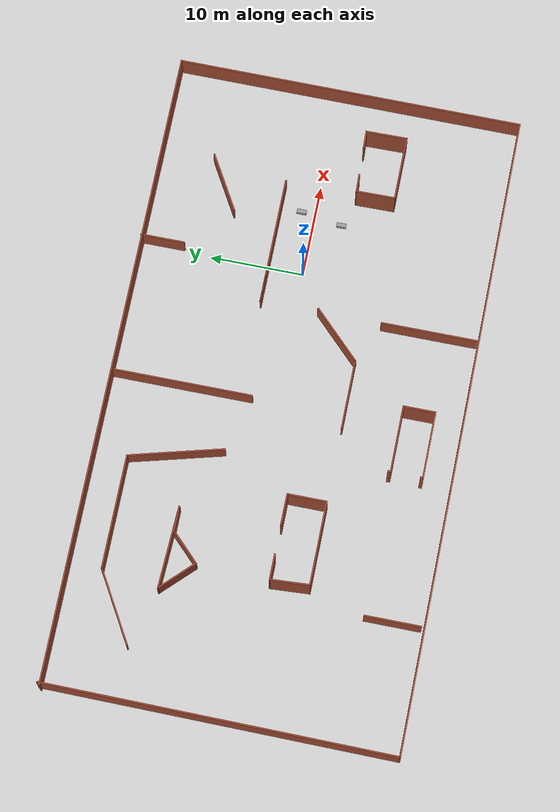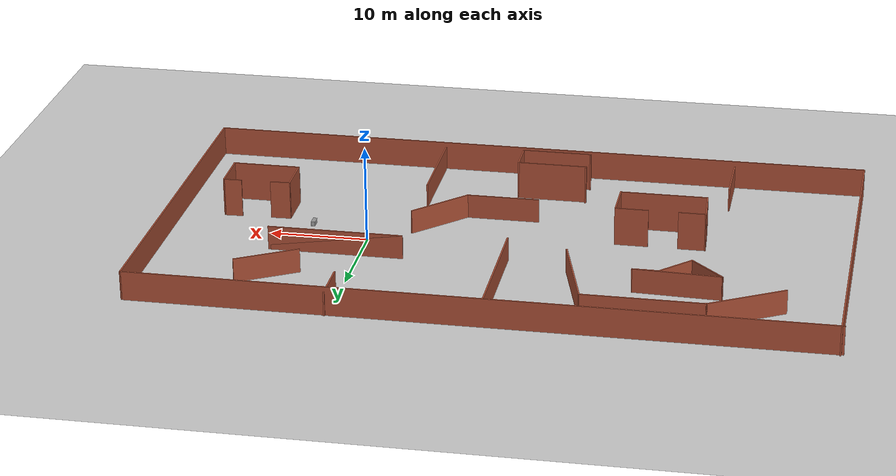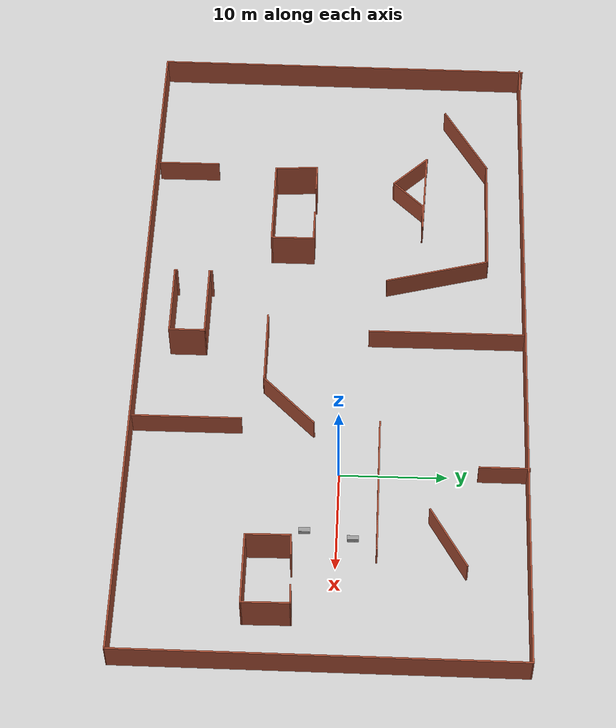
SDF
<sdf version="1.7">
 <world name="default">
  <model name="ground_plane">
   <static>1</static>
   <link name="link">
    <collision name="collision">
     <geometry><plane><normal>0 0 1</normal><size>100 100</size></plane></geometry>
     <surface>
      <contact><collide_bitmask>65535</collide_bitmask></contact>
      <friction><ode><mu>100</mu><mu2>50</mu2></ode></friction>
     </surface>
    </collision>
    <visual name="visual">
     <cast_shadows>0</cast_shadows>
     <geometry><plane><normal>0 0 1</normal><size>100 100</size></plane></geometry>
     <material>
      <script><uri>file://media/materials/scripts/gazebo.material</uri><name>Gazebo/Grey</name></script>
     </material>
    </visual>
   </link>
  </model>
  <model name="forkwork.world">
   <pose>-14.2792 -0.985001 0 0 -0 0</pose>
   <link name="Wall_0">
    <collision name="Wall_0_Collision">
     <geometry><box><size>37.2514 0.15 3</size></box></geometry>
     <pose>0 0 1.5 0 -0 0</pose>
    </collision>
    <visual name="Wall_0_Visual">
     <pose>0 0 1.5 0 -0 0</pose>
     <geometry><box><size>37.2514 0.15 3</size></box></geometry>
     <material>
      <script><uri>file://media/materials/scripts/gazebo.material</uri><name>Gazebo/Bricks</name></script>
      <ambient>1 1 1 1</ambient>
     </material>
     <meta><layer>0</layer></meta>
    </visual>
    <pose>-34.4248 1e-06 0 0 -0 -1.57947</pose>
   </link>
   <link name="Wall_1">
    <collision name="Wall_1_Collision">
     <geometry><box><size>69.1611 0.15 3</size></box></geometry>
     <pose>0 0 1.5 0 -0 0</pose>
    </collision>
    <visual name="Wall_1_Visual">
     <pose>0 0 1.5 0 -0 0</pose>
     <geometry><box><size>69.1611 0.15 3</size></box></geometry>
     <material>
      <script><uri>file://media/materials/scripts/gazebo.material</uri><name>Gazebo/Bricks</name></script>
      <ambient>1 1 1 1</ambient>
     </material>
     <meta><layer>0</layer></meta>
    </visual>
    <pose>-0.080338 -18.55 0 0 -0 0</pose>
   </link>
   <link name="Wall_10">
    <collision name="Wall_10_Collision">
     <geometry><box><size>6 0.15 2.5</size></box></geometry>
     <pose>0 0 1.25 0 -0 0</pose>
    </collision>
    <visual name="Wall_10_Visual">
     <pose>0 0 1.25 0 -0 0</pose>
     <geometry><box><size>6 0.15 2.5</size></box></geometry>
     <material>
      <script><uri>file://media/materials/scripts/gazebo.material</uri><name>Gazebo/Bricks</name></script>
      <ambient>1 1 1 1</ambient>
     </material>
     <meta><layer>0</layer></meta>
    </visual>
    <pose>-21.0697 -15.2699 0 0 -0 -1.5708</pose>
   </link>
   <link name="Wall_12">
    <collision name="Wall_12_Collision">
     <geometry><box><size>10.25 0.15 2.5</size></box></geometry>
     <pose>0 0 1.25 0 -0 0</pose>
    </collision>
    <visual name="Wall_12_Visual">
     <pose>0 0 1.25 0 -0 0</pose>
     <geometry><box><size>10.25 0.15 2.5</size></box></geometry>
     <material>
      <script><uri>file://media/materials/scripts/gazebo.material</uri><name>Gazebo/Bricks</name></script>
      <ambient>1 1 1 1</ambient>
     </material>
     <meta><layer>0</layer></meta>
    </visual>
    <pose>9.87941 -13.292 0 0 -0 -1.5708</pose>
   </link>
   <link name="Wall_14">
    <collision name="Wall_14_Collision">
     <geometry><box><size>13.5 0.15 2.5</size></box></geometry>
     <pose>0 0 1.25 0 -0 0</pose>
    </collision>
    <visual name="Wall_14_Visual">
     <pose>0 0 1.25 0 -0 0</pose>
     <geometry><box><size>13.5 0.15 2.5</size></box></geometry>
     <material>
      <script><uri>file://media/materials/scripts/gazebo.material</uri><name>Gazebo/Bricks</name></script>
      <ambient>1 1 1 1</ambient>
     </material>
     <meta><layer>0</layer></meta>
    </visual>
    <pose>16.5544 4.66556 0 0 -0 0</pose>
   </link>
   <link name="Wall_16">
    <collision name="Wall_16_Collision">
     <geometry><box><size>15 0.15 2.5</size></box></geometry>
     <pose>0 0 1.25 0 -0 0</pose>
    </collision>
    <visual name="Wall_16_Visual">
     <pose>0 0 1.25 0 -0 0</pose>
     <geometry><box><size>15 0.15 2.5</size></box></geometry>
     <material>
      <script><uri>file://media/materials/scripts/gazebo.material</uri><name>Gazebo/Bricks</name></script>
      <ambient>1 1 1 1</ambient>
     </material>
     <meta><layer>0</layer></meta>
    </visual>
    <pose>-0.544267 10.8715 0 0 -0 -1.5708</pose>
   </link>
   <link name="Wall_18">
    <collision name="Wall_18_Collision">
     <geometry><box><size>4.75 0.15 2.5</size></box></geometry>
     <pose>0 0 1.25 0 -0 0</pose>
    </collision>
    <visual name="Wall_18_Visual">
     <pose>0 0 1.25 0 -0 0</pose>
     <geometry><box><size>4.75 0.15 2.5</size></box></geometry>
     <material>
      <script><uri>file://media/materials/scripts/gazebo.material</uri><name>Gazebo/Bricks</name></script>
      <ambient>1 1 1 1</ambient>
     </material>
     <meta><layer>0</layer></meta>
    </visual>
    <pose>14.5671 16.1364 0 0 -0 -1.5708</pose>
   </link>
   <link name="Wall_2">
    <collision name="Wall_2_Collision">
     <geometry><box><size>37.0004 0.15 3</size></box></geometry>
     <pose>0 0 1.5 0 -0 0</pose>
    </collision>
    <visual name="Wall_2_Visual">
     <pose>0 0 1.5 0 -0 0</pose>
     <geometry><box><size>37.0004 0.15 3</size></box></geometry>
     <material>
      <script><uri>file://media/materials/scripts/gazebo.material</uri><name>Gazebo/Bricks</name></script>
      <ambient>1 1 1 1</ambient>
     </material>
     <meta><layer>0</layer></meta>
    </visual>
    <pose>34.5057 -0.124999 0 0 -0 1.56643</pose>
   </link>
   <link name="Wall_20">
    <collision name="Wall_20_Collision">
     <geometry><box><size>13.75 0.15 2.5</size></box></geometry>
     <pose>0 0 1.25 0 -0 0</pose>
    </collision>
    <visual name="Wall_20_Visual">
     <pose>0 0 1.25 0 -0 0</pose>
     <geometry><box><size>13.75 0.15 2.5</size></box></geometry>
     <material>
      <script><uri>file://media/materials/scripts/gazebo.material</uri><name>Gazebo/Bricks</name></script>
      <ambient>1 1 1 1</ambient>
     </material>
     <meta><layer>0</layer></meta>
    </visual>
    <pose>16.6794 4.66556 0 0 -0 0</pose>
   </link>
   <link name="Wall_27">
    <pose>-6.14084 -13.726 0 0 -0 -1.5708</pose>
    <visual name="Wall_27_Visual_0">
     <pose>-1.67802 0 2 0 -0 0</pose>
     <geometry><box><size>0.393966 0.15 4</size></box></geometry>
     <material>
      <script><uri>file://media/materials/scripts/gazebo.material</uri><name>Gazebo/Bricks</name></script>
      <ambient>1 1 1 1</ambient>
     </material>
     <meta><layer>0</layer></meta>
    </visual>
    <collision name="Wall_27_Collision_0">
     <geometry><box><size>0.393966 0.15 4</size></box></geometry>
     <pose>-1.67802 0 2 0 -0 0</pose>
    </collision>
    <visual name="Wall_27_Visual_1">
     <pose>1.69698 0 2 0 -0 0</pose>
     <geometry><box><size>0.356034 0.15 4</size></box></geometry>
     <material>
      <script><uri>file://media/materials/scripts/gazebo.material</uri><name>Gazebo/Bricks</name></script>
      <ambient>1 1 1 1</ambient>
     </material>
     <meta><layer>0</layer></meta>
    </visual>
    <collision name="Wall_27_Collision_1">
     <geometry><box><size>0.356034 0.15 4</size></box></geometry>
     <pose>1.69698 0 2 0 -0 0</pose>
    </collision>
   </link>
   <link name="Wall_28">
    <collision name="Wall_28_Collision">
     <geometry><box><size>7.25 0.15 4</size></box></geometry>
     <pose>0 0 2 0 -0 0</pose>
    </collision>
    <visual name="Wall_28_Visual">
     <pose>0 0 2 0 -0 0</pose>
     <geometry><box><size>7.25 0.15 4</size></box></geometry>
     <material>
      <script><uri>file://media/materials/scripts/gazebo.material</uri><name>Gazebo/Bricks</name></script>
      <ambient>1 1 1 1</ambient>
     </material>
     <meta><layer>0</layer></meta>
    </visual>
    <pose>-2.59084 -15.526 0 0 -0 0</pose>
   </link>
   <link name="Wall_29">
    <collision name="Wall_29_Collision">
     <geometry><box><size>3.5 0.15 4</size></box></geometry>
     <pose>0 0 2 0 -0 0</pose>
    </collision>
    <visual name="Wall_29_Visual">
     <pose>0 0 2 0 -0 0</pose>
     <geometry><box><size>3.5 0.15 4</size></box></geometry>
     <material>
      <script><uri>file://media/materials/scripts/gazebo.material</uri><name>Gazebo/Bricks</name></script>
      <ambient>1 1 1 1</ambient>
     </material>
     <meta><layer>0</layer></meta>
    </visual>
    <pose>0.959162 -13.851 0 0 -0 1.5708</pose>
   </link>
   <link name="Wall_3">
    <collision name="Wall_3_Collision">
     <geometry><box><size>69.25 0.15 3</size></box></geometry>
     <pose>0 0 1.5 0 -0 0</pose>
    </collision>
    <visual name="Wall_3_Visual">
     <pose>0 0 1.5 0 -0 0</pose>
     <geometry><box><size>69.25 0.15 3</size></box></geometry>
     <material>
      <script><uri>file://media/materials/scripts/gazebo.material</uri><name>Gazebo/Bricks</name></script>
      <ambient>1 1 1 1</ambient>
     </material>
     <meta><layer>0</layer></meta>
    </visual>
    <pose>0.036161 18.3 0 0 -0 3.14159</pose>
   </link>
   <link name="Wall_30">
    <collision name="Wall_30_Collision">
     <geometry><box><size>7.25 0.15 4</size></box></geometry>
     <pose>0 0 2 0 -0 0</pose>
    </collision>
    <visual name="Wall_30_Visual">
     <pose>0 0 2 0 -0 0</pose>
     <geometry><box><size>7.25 0.15 4</size></box></geometry>
     <material>
      <script><uri>file://media/materials/scripts/gazebo.material</uri><name>Gazebo/Bricks</name></script>
      <ambient>1 1 1 1</ambient>
     </material>
     <meta><layer>0</layer></meta>
    </visual>
    <pose>-2.59084 -12.176 0 0 -0 3.14159</pose>
   </link>
   <link name="Wall_32">
    <collision name="Wall_32_Collision">
     <geometry><box><size>4.25 0.15 4</size></box></geometry>
     <pose>0 0 2 0 -0 0</pose>
    </collision>
    <visual name="Wall_32_Visual">
     <pose>0 0 2 0 -0 0</pose>
     <geometry><box><size>4.25 0.15 4</size></box></geometry>
     <material>
      <script><uri>file://media/materials/scripts/gazebo.material</uri><name>Gazebo/Bricks</name></script>
      <ambient>1 1 1 1</ambient>
     </material>
     <meta><layer>0</layer></meta>
    </visual>
    <pose>23.2197 -5.021 0 0 -0 -1.55982</pose>
   </link>
   <link name="Wall_33">
    <collision name="Wall_33_Collision">
     <geometry><box><size>7 0.15 4</size></box></geometry>
     <pose>0 0 2 0 -0 0</pose>
    </collision>
    <visual name="Wall_33_Visual">
     <pose>0 0 2 0 -0 0</pose>
     <geometry><box><size>7 0.15 4</size></box></geometry>
     <material>
      <script><uri>file://media/materials/scripts/gazebo.material</uri><name>Gazebo/Bricks</name></script>
      <ambient>1 1 1 1</ambient>
     </material>
     <meta><layer>0</layer></meta>
    </visual>
    <pose>26.6672 -7.071 0 0 -0 0</pose>
   </link>
   <link name="Wall_34">
    <collision name="Wall_34_Collision">
     <geometry><box><size>4.5 0.15 4</size></box></geometry>
     <pose>0 0 2 0 -0 0</pose>
    </collision>
    <visual name="Wall_34_Visual">
     <pose>0 0 2 0 -0 0</pose>
     <geometry><box><size>4.5 0.15 4</size></box></geometry>
     <material>
      <script><uri>file://media/materials/scripts/gazebo.material</uri><name>Gazebo/Bricks</name></script>
      <ambient>1 1 1 1</ambient>
     </material>
     <meta><layer>0</layer></meta>
    </visual>
    <pose>30.0697 -4.896 0 0 -0 1.58114</pose>
   </link>
   <link name="Wall_35">
    <pose>26.6222 -2.846 0 0 -0 -3.10511</pose>
    <visual name="Wall_35_Visual_0">
     <pose>-2.54266 0 2 0 -0 0</pose>
     <geometry><box><size>1.91925 0.15 4</size></box></geometry>
     <material>
      <script><uri>file://media/materials/scripts/gazebo.material</uri><name>Gazebo/Bricks</name></script>
      <ambient>1 1 1 1</ambient>
     </material>
     <meta><layer>0</layer></meta>
    </visual>
    <collision name="Wall_35_Collision_0">
     <geometry><box><size>1.91925 0.15 4</size></box></geometry>
     <pose>-2.54266 0 2 0 -0 0</pose>
    </collision>
    <visual name="Wall_35_Visual_1">
     <pose>2.45962 0 2 0 -0 0</pose>
     <geometry><box><size>2.08531 0.15 4</size></box></geometry>
     <material>
      <script><uri>file://media/materials/scripts/gazebo.material</uri><name>Gazebo/Bricks</name></script>
      <ambient>1 1 1 1</ambient>
     </material>
     <meta><layer>0</layer></meta>
    </visual>
    <collision name="Wall_35_Collision_1">
     <geometry><box><size>2.08531 0.15 4</size></box></geometry>
     <pose>2.45962 0 2 0 -0 0</pose>
    </collision>
   </link>
   <link name="Wall_37">
    <collision name="Wall_37_Collision">
     <geometry><box><size>8.5 0.15 2.5</size></box></geometry>
     <pose>0 0 1.25 0 -0 0</pose>
    </collision>
    <visual name="Wall_37_Visual">
     <pose>0 0 1.25 0 -0 0</pose>
     <geometry><box><size>8.5 0.15 2.5</size></box></geometry>
     <material>
      <script><uri>file://media/materials/scripts/gazebo.material</uri><name>Gazebo/Bricks</name></script>
      <ambient>1 1 1 1</ambient>
     </material>
     <meta><layer>0</layer></meta>
    </visual>
    <pose>-25.0526 12.6884 0 0 -0 0.523599</pose>
   </link>
   <link name="Wall_38">
    <collision name="Wall_38_Collision">
     <geometry><box><size>12.25 0.15 2.5</size></box></geometry>
     <pose>0 0 1.25 0 -0 0</pose>
    </collision>
    <visual name="Wall_38_Visual">
     <pose>0 0 1.25 0 -0 0</pose>
     <geometry><box><size>12.25 0.15 2.5</size></box></geometry>
     <material>
      <script><uri>file://media/materials/scripts/gazebo.material</uri><name>Gazebo/Bricks</name></script>
      <ambient>1 1 1 1</ambient>
     </material>
     <meta><layer>0</layer></meta>
    </visual>
    <pose>-15.387 14.7759 0 0 -0 0</pose>
   </link>
   <link name="Wall_39">
    <collision name="Wall_39_Collision">
     <geometry><box><size>10.25 0.15 2.5</size></box></geometry>
     <pose>0 0 1.25 0 -0 0</pose>
    </collision>
    <visual name="Wall_39_Visual">
     <pose>0 0 1.25 0 -0 0</pose>
     <geometry><box><size>10.25 0.15 2.5</size></box></geometry>
     <material>
      <script><uri>file://media/materials/scripts/gazebo.material</uri><name>Gazebo/Bricks</name></script>
      <ambient>1 1 1 1</ambient>
     </material>
     <meta><layer>0</layer></meta>
    </visual>
    <pose>-8.02994 9.89796 0 0 -0 -1.309</pose>
   </link>
   <link name="Wall_41">
    <collision name="Wall_41_Collision">
     <geometry><box><size>7.5 0.15 2.5</size></box></geometry>
     <pose>0 0 1.25 0 -0 0</pose>
    </collision>
    <visual name="Wall_41_Visual">
     <pose>0 0 1.25 0 -0 0</pose>
     <geometry><box><size>7.5 0.15 2.5</size></box></geometry>
     <material>
      <script><uri>file://media/materials/scripts/gazebo.material</uri><name>Gazebo/Bricks</name></script>
      <ambient>1 1 1 1</ambient>
     </material>
     <meta><layer>0</layer></meta>
    </visual>
    <pose>1.59161 -6.32949 0 0 -0 0</pose>
   </link>
   <link name="Wall_42">
    <collision name="Wall_42_Collision">
     <geometry><box><size>7 0.15 2.5</size></box></geometry>
     <pose>0 0 1.25 0 -0 0</pose>
    </collision>
    <visual name="Wall_42_Visual">
     <pose>0 0 1.25 0 -0 0</pose>
     <geometry><box><size>7 0.15 2.5</size></box></geometry>
     <material>
      <script><uri>file://media/materials/scripts/gazebo.material</uri><name>Gazebo/Bricks</name></script>
      <ambient>1 1 1 1</ambient>
     </material>
     <meta><layer>0</layer></meta>
    </visual>
    <pose>7.68845 -3.90765 0 0 -0 0.785398</pose>
   </link>
   <link name="Wall_44">
    <collision name="Wall_44_Collision">
     <geometry><box><size>6.75 0.15 2.5</size></box></geometry>
     <pose>0 0 1.25 0 -0 0</pose>
    </collision>
    <visual name="Wall_44_Visual">
     <pose>0 0 1.25 0 -0 0</pose>
     <geometry><box><size>6.75 0.15 2.5</size></box></geometry>
     <material>
      <script><uri>file://media/materials/scripts/gazebo.material</uri><name>Gazebo/Bricks</name></script>
      <ambient>1 1 1 1</ambient>
     </material>
     <meta><layer>0</layer></meta>
    </visual>
    <pose>22.0634 11.0497 0 0 -0 -2.61799</pose>
   </link>
   <link name="Wall_46">
    <pose>-15.0788 -2.284 0 0 -0 0</pose>
    <visual name="Wall_46_Visual_0">
     <pose>-3.20513 0 2 0 -0 0</pose>
     <geometry><box><size>2.83973 0.15 4</size></box></geometry>
     <material>
      <script><uri>file://media/materials/scripts/gazebo.material</uri><name>Gazebo/Bricks</name></script>
      <ambient>1 1 1 1</ambient>
     </material>
     <meta><layer>0</layer></meta>
    </visual>
    <collision name="Wall_46_Collision_0">
     <geometry><box><size>2.83973 0.15 4</size></box></geometry>
     <pose>-3.20513 0 2 0 -0 0</pose>
    </collision>
    <visual name="Wall_46_Visual_1">
     <pose>2.91987 0 2 0 -0 0</pose>
     <geometry><box><size>3.41027 0.15 4</size></box></geometry>
     <material>
      <script><uri>file://media/materials/scripts/gazebo.material</uri><name>Gazebo/Bricks</name></script>
      <ambient>1 1 1 1</ambient>
     </material>
     <meta><layer>0</layer></meta>
    </visual>
    <collision name="Wall_46_Collision_1">
     <geometry><box><size>3.41027 0.15 4</size></box></geometry>
     <pose>2.91987 0 2 0 -0 0</pose>
    </collision>
   </link>
   <link name="Wall_47">
    <collision name="Wall_47_Collision">
     <geometry><box><size>4.25 0.15 4</size></box></geometry>
     <pose>0 0 2 0 -0 0</pose>
    </collision>
    <visual name="Wall_47_Visual">
     <pose>0 0 2 0 -0 0</pose>
     <geometry><box><size>4.25 0.15 4</size></box></geometry>
     <material>
      <script><uri>file://media/materials/scripts/gazebo.material</uri><name>Gazebo/Bricks</name></script>
      <ambient>1 1 1 1</ambient>
     </material>
     <meta><layer>0</layer></meta>
    </visual>
    <pose>-10.5288 -4.334 0 0 -0 -1.5708</pose>
   </link>
   <link name="Wall_48">
    <collision name="Wall_48_Collision">
     <geometry><box><size>9 0.15 4</size></box></geometry>
     <pose>0 0 2 0 -0 0</pose>
    </collision>
    <visual name="Wall_48_Visual">
     <pose>0 0 2 0 -0 0</pose>
     <geometry><box><size>9 0.15 4</size></box></geometry>
     <material>
      <script><uri>file://media/materials/scripts/gazebo.material</uri><name>Gazebo/Bricks</name></script>
      <ambient>1 1 1 1</ambient>
     </material>
     <meta><layer>0</layer></meta>
    </visual>
    <pose>-14.9538 -6.384 0 0 -0 3.14159</pose>
   </link>
   <link name="Wall_49">
    <collision name="Wall_49_Collision">
     <geometry><box><size>4.25762 0.15 4</size></box></geometry>
     <pose>0 0 2 0 -0 0</pose>
    </collision>
    <visual name="Wall_49_Visual">
     <pose>0 0 2 0 -0 0</pose>
     <geometry><box><size>4.25762 0.15 4</size></box></geometry>
     <material>
      <script><uri>file://media/materials/scripts/gazebo.material</uri><name>Gazebo/Bricks</name></script>
      <ambient>1 1 1 1</ambient>
     </material>
     <meta><layer>0</layer></meta>
    </visual>
    <pose>-19.5038 -4.334 0 0 -0 1.6317</pose>
   </link>
   <link name="Wall_5">
    <collision name="Wall_5_Collision">
     <geometry><box><size>4.75 0.15 2.5</size></box></geometry>
     <pose>0 0 1.25 0 -0 0</pose>
    </collision>
    <visual name="Wall_5_Visual">
     <pose>0 0 1.25 0 -0 0</pose>
     <geometry><box><size>4.75 0.15 2.5</size></box></geometry>
     <material>
      <script><uri>file://media/materials/scripts/gazebo.material</uri><name>Gazebo/Bricks</name></script>
      <ambient>1 1 1 1</ambient>
     </material>
     <meta><layer>0</layer></meta>
    </visual>
    <pose>-20.7306 7.10775 0 0 -0 -0.785398</pose>
   </link>
   <link name="Wall_6">
    <collision name="Wall_6_Collision">
     <geometry><box><size>4.25 0.15 2.5</size></box></geometry>
     <pose>0 0 1.25 0 -0 0</pose>
    </collision>
    <visual name="Wall_6_Visual">
     <pose>0 0 1.25 0 -0 0</pose>
     <geometry><box><size>4.25 0.15 2.5</size></box></geometry>
     <material>
      <script><uri>file://media/materials/scripts/gazebo.material</uri><name>Gazebo/Bricks</name></script>
      <ambient>1 1 1 1</ambient>
     </material>
     <meta><layer>0</layer></meta>
    </visual>
    <pose>-17.6547 6.93097 0 0 -0 0.785398</pose>
   </link>
   <link name="Wall_7">
    <collision name="Wall_7_Collision">
     <geometry><box><size>2.75 0.15 2.5</size></box></geometry>
     <pose>0 0 1.25 0 -0 0</pose>
    </collision>
    <visual name="Wall_7_Visual">
     <pose>0 0 1.25 0 -0 0</pose>
     <geometry><box><size>2.75 0.15 2.5</size></box></geometry>
     <material>
      <script><uri>file://media/materials/scripts/gazebo.material</uri><name>Gazebo/Bricks</name></script>
      <ambient>1 1 1 1</ambient>
     </material>
     <meta><layer>0</layer></meta>
    </visual>
    <pose>-14.9051 8.38054 0 0 -0 0</pose>
   </link>
   <link name="Wall_8">
    <collision name="Wall_8_Collision">
     <geometry><box><size>8.90897 0.15 2.5</size></box></geometry>
     <pose>0 0 1.25 0 -0 0</pose>
    </collision>
    <visual name="Wall_8_Visual">
     <pose>0 0 1.25 0 -0 0</pose>
     <geometry><box><size>8.90897 0.15 2.5</size></box></geometry>
     <material>
      <script><uri>file://media/materials/scripts/gazebo.material</uri><name>Gazebo/Bricks</name></script>
      <ambient>1 1 1 1</ambient>
     </material>
     <meta><layer>0</layer></meta>
    </visual>
    <pose>-17.981 8.55732 0 0 -0 3.10122</pose>
   </link>
   <static>1</static>
  </model>
  <model name="cotton_ok">
   <link name="link_0">
    <inertial>
     <mass>1</mass>
     <inertia>
      <ixx>0.166667</ixx>
      <ixy>0</ixy>
      <ixz>0</ixz>
      <iyy>0.166667</iyy>
      <iyz>0</iyz>
      <izz>0.166667</izz>
     </inertia>
    </inertial>
    <visual name="visual">
     <geometry><mesh><uri>file:///home/cyun/cotton_box.stl</uri><scale>1 1 1</scale></mesh></geometry>
     <material>
      <lighting>1</lighting>
      <script><uri>file://media/materials/scripts/gazebo.material</uri><name>Gazebo/Grey</name></script>
      <shader type="pixel"><normal_map>__default__</normal_map></shader>
      <ambient>0.3 0.3 0.3 1</ambient>
      <diffuse>0.7 0.7 0.7 1</diffuse>
      <specular>0.01 0.01 0.01 1</specular>
      <emissive>0 0 0 1</emissive>
     </material>
    </visual>
    <collision name="collision">
     <geometry><mesh><uri>file:///home/cyun/cotton_box.stl</uri><scale>1 1 1</scale></mesh></geometry>
     <surface>
      <friction>
       <ode><mu>1</mu><mu2>1</mu2><fdir1>0 0 0</fdir1><slip1>0</slip1><slip2>0</slip2></ode>
       <torsional>
        <coefficient>1</coefficient>
        <patch_radius>0</patch_radius>
        <surface_radius>0</surface_radius>
        <use_patch_radius>1</use_patch_radius>
        <ode><slip>0</slip></ode>
       </torsional>
      </friction>
      <bounce><restitution_coefficient>0</restitution_coefficient><threshold>1e+06</threshold></bounce>
      <contact>
       <collide_without_contact>0</collide_without_contact>
       <collide_without_contact_bitmask>1</collide_without_contact_bitmask>
       <collide_bitmask>1</collide_bitmask>
       <ode>
        <soft_cfm>0</soft_cfm>
        <soft_erp>0.2</soft_erp>
        <kp>1e+13</kp>
        <kd>1</kd>
        <max_vel>0.01</max_vel>
        <min_depth>0</min_depth>
       </ode>
       <bullet>
        <split_impulse>1</split_impulse>
        <split_impulse_penetration_threshold>-0.01</split_impulse_penetration_threshold>
        <soft_cfm>0</soft_cfm>
        <soft_erp>0.2</soft_erp>
        <kp>1e+13</kp>
        <kd>1</kd>
       </bullet>
      </contact>
     </surface>
    </collision>
   </link>
   <static>0</static>
   <pose>6.89585 1.49994 0.019943 -3.2e-05 9e-06 0.000303</pose>
  </model>
  <model name="cotton_ok_3">
   <link name="link_0">
    <inertial>
     <mass>1</mass>
     <inertia>
      <ixx>0.166667</ixx>
      <ixy>0</ixy>
      <ixz>0</ixz>
      <iyy>0.166667</iyy>
      <iyz>0</iyz>
      <izz>0.166667</izz>
     </inertia>
    </inertial>
    <visual name="visual">
     <geometry><mesh><uri>file:///home/cyun/cotton_box.stl</uri><scale>1 1 1</scale></mesh></geometry>
     <material>
      <lighting>1</lighting>
      <script><uri>file://media/materials/scripts/gazebo.material</uri><name>Gazebo/Grey</name></script>
      <shader type="pixel"><normal_map>__default__</normal_map></shader>
      <ambient>0.3 0.3 0.3 1</ambient>
      <diffuse>0.7 0.7 0.7 1</diffuse>
      <specular>0.01 0.01 0.01 1</specular>
      <emissive>0 0 0 1</emissive>
     </material>
    </visual>
    <collision name="collision">
     <geometry><mesh><uri>file:///home/cyun/cotton_box.stl</uri><scale>1 1 1</scale></mesh></geometry>
     <surface>
      <friction>
       <ode><mu>1</mu><mu2>1</mu2><fdir1>0 0 0</fdir1><slip1>0</slip1><slip2>0</slip2></ode>
       <torsional>
        <coefficient>1</coefficient>
        <patch_radius>0</patch_radius>
        <surface_radius>0</surface_radius>
        <use_patch_radius>1</use_patch_radius>
        <ode><slip>0</slip></ode>
       </torsional>
      </friction>
      <bounce><restitution_coefficient>0</restitution_coefficient><threshold>1e+06</threshold></bounce>
      <contact>
       <collide_without_contact>0</collide_without_contact>
       <collide_without_contact_bitmask>1</collide_without_contact_bitmask>
       <collide_bitmask>1</collide_bitmask>
       <ode>
        <soft_cfm>0</soft_cfm>
        <soft_erp>0.2</soft_erp>
        <kp>1e+13</kp>
        <kd>1</kd>
        <max_vel>0.01</max_vel>
        <min_depth>0</min_depth>
       </ode>
       <bullet>
        <split_impulse>1</split_impulse>
        <split_impulse_penetration_threshold>-0.01</split_impulse_penetration_threshold>
        <soft_cfm>0</soft_cfm>
        <soft_erp>0.2</soft_erp>
        <kp>1e+13</kp>
        <kd>1</kd>
       </bullet>
      </contact>
     </surface>
    </collision>
   </link>
   <static>0</static>
   <pose>6.19283 -2.93371 0.019992 -1.6e-05 -0 2e-06</pose>
  </model>
 </world>
</sdf>
